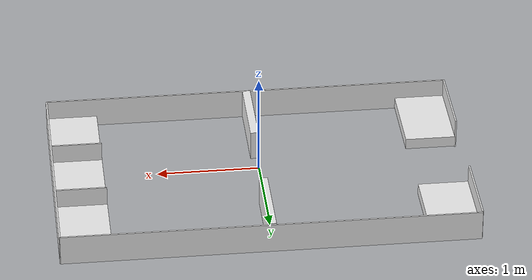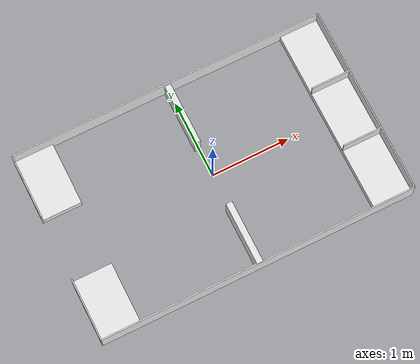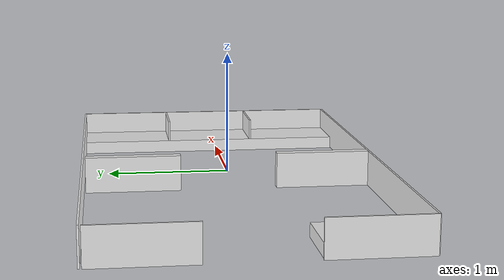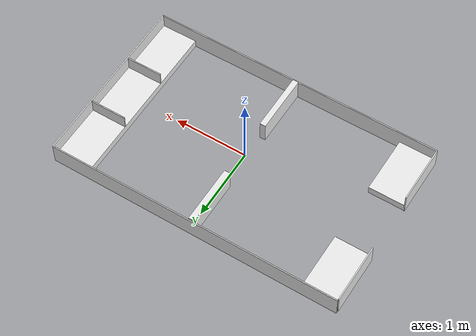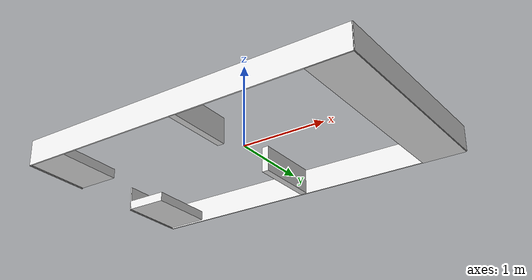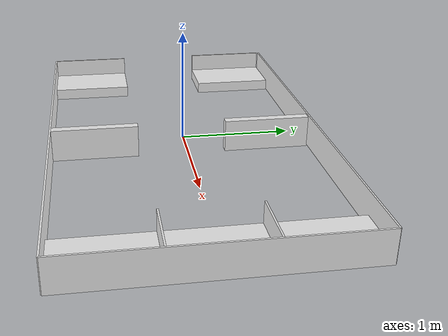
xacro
<?xml version="1.0"?>

<robot name="brsu-c025-arena">

  	<link name="wall_1">
    		<inertial>
      			<origin xyz="0.0 1.22 0.0" />
      			<mass value="10.0" />
      			<inertia  ixx="1.0" ixy="0.0"  ixz="0.0"  iyy="1.0"  iyz="0.0"  izz="1.0" />
    		</inertial>
    		<visual>
      			<origin xyz="0.0 1.22 0.0"/>
      			<geometry>
        			<box size="4.04 0.015 0.3" />
      			</geometry>
    		</visual>
    		<collision>
      			<origin xyz="0.0 1.22 0.0"/>
      		<geometry>
        		<box size="4.04 0.015 0.3" />
      		</geometry>
    		</collision>
  	</link>

	<joint name="join1" type="fixed">
    		<origin xyz="2.02 0 0" rpy="0 0 0"/>
    		<parent link="wall_1"/>
    		<child link="wall_2"/>
  	</joint>

    	<link name="wall_2">
    		<inertial>
      			<origin xyz="0 0 0" />
      			<mass value="10.0" />
      			<inertia  ixx="1.0" ixy="0.0"  ixz="0.0"  iyy="1.0"  iyz="0.0"  izz="1.0" />
    		</inertial>
    		<visual>
      			<origin xyz="0 0 0"/>
      			<geometry>
        			<box size="0.015 -2.44 0.3" />
      			</geometry>
    		</visual>
    		<collision>
      			<origin xyz="0 0 0"/>
      			<geometry>
        			<box size="0.015 -2.44 0.3" />
      			</geometry>
    		</collision>
  	</link>

  	<joint name="join11" type="fixed">
    		<origin xyz="-0.25 0.4 0.05" rpy="0 0 0"/>
    		<parent link="wall_2"/>
    		<child link="wall_11"/>
  	</joint>

  	<link name="wall_11">
		<inertial>
			<origin xyz="0 0 0" />
			<mass value="10.0" />
			<inertia ixx="1.0" ixy="0.0"  ixz="0.0"  iyy="1.0"  iyz="0.0"  izz="1.0" />
		</inertial>
		<visual>
			<origin xyz="0 0 0" />
			<geometry>
				<box size="0.5 0.015 0.19" />
			</geometry>
		</visual>
		<collision>
			<origin xyz="0 0 0" />
			<geometry>
				<box size="0.5 0.015 0.19" />
			</geometry>
		</collision>
  	</link>

  	<joint name="join12" type="fixed">
    		<origin xyz="-0.25 -0.4 0.05" rpy="0 0 0"/>
    		<parent link="wall_2"/>
    		<child link="wall_12"/>
  	</joint>

  	<link name="wall_12">
		<inertial>
			<origin xyz="0 0 0" />
			<mass value="10.0" />
			<inertia ixx="1.0" ixy="0.0"  ixz="0.0"  iyy="1.0"  iyz="0.0"  izz="1.0" />
		</inertial>
		<visual>
			<origin xyz="0 0 0" />
			<geometry>
				<box size="0.5 0.015 0.19" />
			</geometry>
		</visual>
		<collision>
			<origin xyz="0 0 0" />
			<geometry>
				<box size="0.5 0.015 0.19" />
			</geometry>
		</collision>
  	</link>

	<joint name="join2" type="fixed">
    		<origin xyz="-2.02 -1.22 0" rpy="0 0 0"/>
    		<parent link="wall_2"/>
    		<child link="wall_3"/>
  	</joint>

	<link name="wall_3">
    		<inertial>
      			<origin xyz="0 0 0" />
      			<mass value="10.0" />
      			<inertia  ixx="1.0" ixy="0.0"  ixz="0.0"  iyy="1.0"  iyz="0.0"  izz="1.0" />
    		</inertial>
    		<visual>
      			<origin xyz="0 0 0"/>
      			<geometry>
        			<box size="4.04 0.015 0.3" />
      			</geometry>
    		</visual>
    		<collision>
      			<origin xyz="0 0 0"/>
      		<geometry>
        		<box size="4.04 0.015 0.3" />
      		</geometry>
    		</collision>
  	</link>

	<joint name="join10" type="fixed">
    		<origin xyz="-0.25 0.0 -0.1" rpy="0 0 0"/>
    		<parent link="wall_2"/>
    		<child link="wall_10"/>
  	</joint>

	<link name="wall_10">
    		<inertial>
      			<origin xyz="0 0 0" />
      			<mass value="10.0" />
      			<inertia  ixx="1.0" ixy="0.0"  ixz="0.0"  iyy="1.0"  iyz="0.0"  izz="1.0" />
    		</inertial>
    		<visual>
      			<origin xyz="0 0.0 0"/>
      			<geometry>
        			<box size="0.5 2.44 0.11" />
      			</geometry>
    		</visual>
    		<collision>
      			<origin xyz="0 0.0 0" />
      		<geometry>
        		<box size="0.5 2.44 0.11" />
      		</geometry>
    		</collision>
  	</link>

	<joint name="join3" type="fixed">
    		<origin xyz="0 -0.4 0" rpy="0 0 0"/>
    		<parent link="wall_3"/>
    		<child link="wall_4"/>
  	</joint>

	<link name="wall_4">
    		<inertial>
      			<origin xyz="0 0.8 0" />
      			<mass value="10.0" />
      			<inertia  ixx="1.0" ixy="0.0"  ixz="0.0"  iyy="1.0"  iyz="0.0"  izz="1.0" />
    		</inertial>
    		<visual>
      			<origin xyz="0 0.8 0"/>
      			<geometry>
        			<box size="0.08 0.8 0.3" />
      			</geometry>
    		</visual>
    		<collision>
      			<origin xyz="0 0.8 0"/>
      		<geometry>
        		<box size="0.08 0.8 0.3" />
      		</geometry>
    		</collision>
  	</link>

	<joint name="join4" type="fixed">
    		<origin xyz="0 0 0" rpy="0 0 0"/>
    		<parent link="wall_1"/>
    		<child link="wall_5"/>
  	</joint>

	<link name="wall_5">
    		<inertial>
      			<origin xyz="0 0.8 0" />
      			<mass value="10.0" />
      			<inertia  ixx="1.0" ixy="0.0"  ixz="0.0"  iyy="1.0"  iyz="0.0"  izz="1.0" />
    		</inertial>
    		<visual>
      			<origin xyz="0 0.8 0"/>
      			<geometry>
        			<box size="0.08 0.8 0.3" />
      			</geometry>
    		</visual>
    		<collision>
      			<origin xyz="0 0.8 0" />
      		<geometry>
        		<box size="0.08 0.8 0.3" />
      		</geometry>
    		</collision>
  	</link>

	<joint name="join5" type="fixed">
    		<origin xyz="-2.02 -0.4 0" rpy="0 0 0"/>
    		<parent link="wall_3"/>
    		<child link="wall_6"/>
  	</joint>

	<link name="wall_6">
    		<inertial>
      			<origin xyz="0 0.8 0" />
      			<mass value="10.0" />
      			<inertia  ixx="1.0" ixy="0.0"  ixz="0.0"  iyy="1.0"  iyz="0.0"  izz="1.0" />
    		</inertial>
    		<visual>
      			<origin xyz="0 0.8 0"/>
      			<geometry>
        			<box size="0.015 0.8 0.3" />
      			</geometry>
    		</visual>
    		<collision>
      			<origin xyz="0 0.8 0"/>
      		<geometry>
        		<box size="0.015 0.8 0.3" />
      		</geometry>
    		</collision>
  	</link>

	<joint name="join8" type="fixed">
    		<origin xyz="0.25 0.8 -0.085" rpy="0 0 0"/>
    		<parent link="wall_6"/>
    		<child link="wall_9"/>
  	</joint>

	<link name="wall_9">
    		<inertial>
      			<origin xyz="0.0 0.0 0.0" />
      			<mass value="10.0" />
      			<inertia  ixx="1.0" ixy="0.0"  ixz="0.0"  iyy="1.0"  iyz="0.0"  izz="1.0" />
    		</inertial>
    		<visual>
      			<origin xyz="0.0 0.0 0.0"/>
      			<geometry>
        			<box size="0.5 0.8 0.11" />
      			</geometry>
    		</visual>
    		<collision>
      			<origin xyz="0.0 0.0 0.0" />
      		<geometry>
        		<box size="0.5 0.8 0.11" />
      		</geometry>
    		</collision>
  	</link>

	<joint name="join6" type="fixed">
    		<origin xyz="-2.02 0 0" rpy="0 0 0"/>
    		<parent link="wall_1"/>
    		<child link="wall_7"/>
  	</joint>

	<link name="wall_7">
    		<inertial>
      			<origin xyz="0 0.8 0" />
      			<mass value="10.0" />
      			<inertia  ixx="1.0" ixy="0.0"  ixz="0.0"  iyy="1.0"  iyz="0.0"  izz="1.0" />
    		</inertial>
    		<visual>
      			<origin xyz="0 0.8 0"/>
      			<geometry>
        			<box size="0.015 0.8 0.3" />
      			</geometry>
    		</visual>
    		<collision>
      			<origin xyz="0 0.8 0" />
      		<geometry>
        		<box size="0.015 0.8 0.3" />
      		</geometry>
    		</collision>
  	</link>

	<joint name="join7" type="fixed">
    		<origin xyz="0.25 0.8 -0.085" rpy="0 0 0"/>
    		<parent link="wall_7"/>
    		<child link="wall_8"/>
  	</joint>

	<link name="wall_8">
    		<inertial>
      			<origin xyz="0.0 0.0 0.0" />
      			<mass value="10.0" />
      			<inertia  ixx="1.0" ixy="0.0"  ixz="0.0"  iyy="1.0"  iyz="0.0"  izz="1.0" />
    		</inertial>
    		<visual>
      			<origin xyz="0.0 0.0 0.0"/>
      			<geometry>
        			<box size="0.5 0.8 0.11" />
      			</geometry>
    		</visual>
    		<collision>
      			<origin xyz="0.0 0.0 0.0" />
      		<geometry>
        		<box size="0.5 0.8 0.11" />
      		</geometry>
    		</collision>
  	</link>

  <gazebo reference="wall_1">
	<material>Gazebo/White</material>
	<selfCollide>false</selfCollide>
  </gazebo>
  <gazebo reference="wall_2">
	<material>Gazebo/White</material>
	<selfCollide>false</selfCollide>
  </gazebo>
  <gazebo reference="wall_3">
	<material>Gazebo/White</material>
	<selfCollide>false</selfCollide>
  </gazebo>
  <gazebo reference="wall_4">
	<material>Gazebo/White</material>
	<selfCollide>false</selfCollide>
  </gazebo>
  <gazebo reference="wall_5">
	<material>Gazebo/White</material>
	<selfCollide>false</selfCollide>
  </gazebo>
  <gazebo reference="wall_6">
	<material>Gazebo/White</material>
	<selfCollide>false</selfCollide>
  </gazebo>
  <gazebo reference="wall_7">
	<material>Gazebo/White</material>
	<selfCollide>false</selfCollide>
  </gazebo>
  <gazebo reference="wall_8">
	<material>Gazebo/White</material>
	<selfCollide>false</selfCollide>
  </gazebo>
  <gazebo reference="wall_9">
	<material>Gazebo/White</material>
	<selfCollide>false</selfCollide>
  </gazebo>
  <gazebo reference="wall_10">
	<material>Gazebo/White</material>
	<selfCollide>false</selfCollide>
  </gazebo>
  <gazebo reference="wall_11">
	<material>Gazebo/White</material>
	<selfCollide>false</selfCollide>
  </gazebo>
  <gazebo reference="wall_12">
	<material>Gazebo/White</material>
	<selfCollide>false</selfCollide>
  </gazebo>
</robot>
